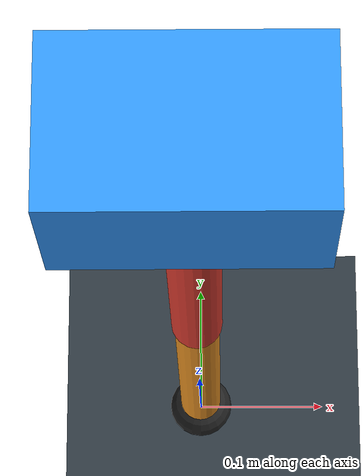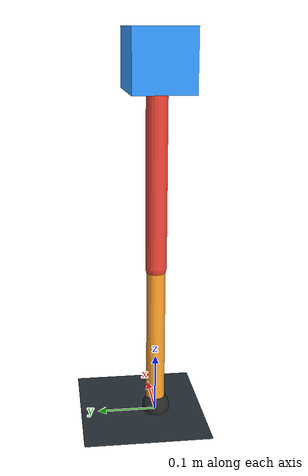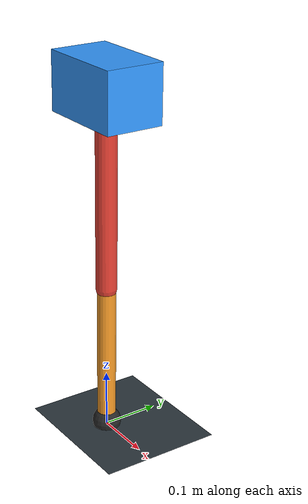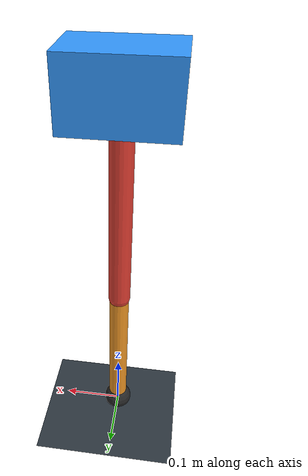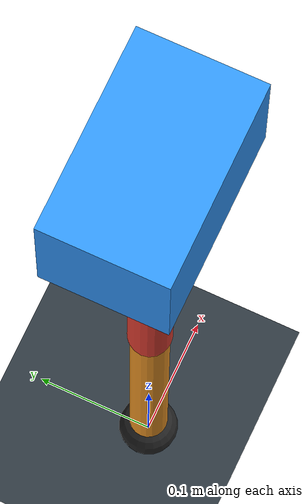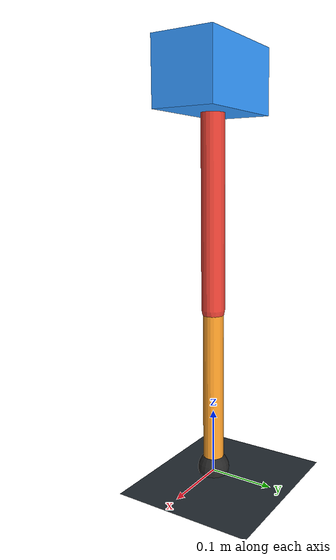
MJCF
<mujoco model="single_axis_two_bar">
  <compiler angle="radian" inertiafromgeom="true"/>
  <option timestep="0.001" integrator="implicitfast" gravity="0 0 -9.81"/>
  <default>
    <joint damping="0.08"/>
    <geom friction="1.2 0.01 0.0001" condim="3"/>
  </default>
  <worldbody>
    <geom name="floor" type="plane" size="5 5 0.1" rgba="0.18 0.22 0.25 1"/>
    <body name="carriage" pos="0 0 0.6072038763362096">
      <joint name="pole_slide" type="slide" axis="0 0 1"/>
      <geom name="payload" type="box" size="0.08 0.05 0.05" mass="3.436281736963466" rgba="0.2 0.6 1 1"/>
      <body name="thigh" pos="0 0 0">
        <joint name="hip" type="hinge" axis="0 1 0"/>
        <geom name="thigh_link" type="capsule" fromto="0 0 0 0 0 -0.34438295258858986" size="0.018" mass="0.24537740433859503" rgba="0.9 0.25 0.2 1"/>
        <body name="shank" pos="0 0 -0.34438295258858986">
          <joint name="knee" type="hinge" axis="0 1 0"/>
          <geom name="shank_link" type="capsule" fromto="0 0 0 0 0 -0.2558272292013169" size="0.016" mass="0.18228028126451984" rgba="0.95 0.6 0.15 1"/>
          <geom name="foot" type="sphere" pos="0 0 -0.2558272292013169" size="0.025" mass="0.03" rgba="0.15 0.15 0.15 1"/>
          <site name="toe" pos="0 0 -0.2558272292013169" size="0.008"/>
        </body>
      </body>
    </body>
  </worldbody>
  <actuator>
    <motor name="hip_motor" joint="hip" ctrlrange="-35.39218538192208 35.39218538192208"/>
    <motor name="knee_motor" joint="knee" ctrlrange="-164.38080251700083 164.38080251700083"/>
  </actuator>
</mujoco>
